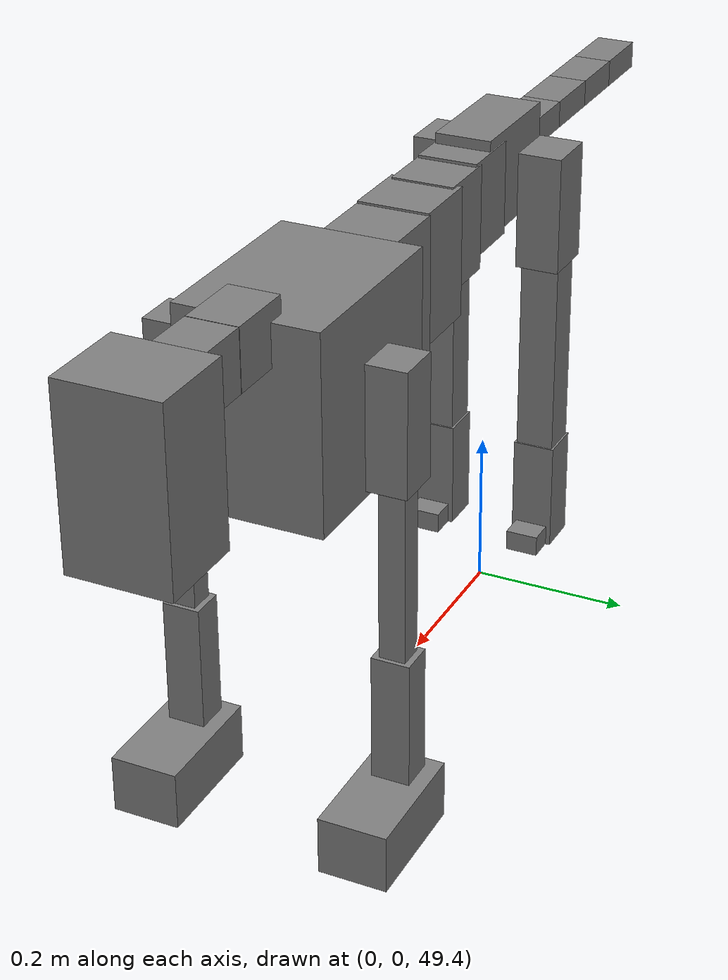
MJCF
<mujoco model="dog">

    <default>
        <joint armature="0.02" stiffness="1" damping="0.2" limited="true"/>
        <geom condim="3" friction="1 0.05 0.05" margin="0.01"/>
        <motor ctrllimited="true" ctrlrange="-1.0 1.0" forcelimited="true" gear="50"/>
    </default>

    <compiler inertiafromgeom="true" angle="radian"/>

    <option timestep="0.016" iterations="50" tolerance="1e-10" solver="Newton" jacobian="dense" cone="pyramidal"/>

    <size nconmax="20000" njmax="60000" nstack="5000000"/>
    <visual>
        <map force="0.1" zfar="30"/>
        <rgba haze="0.15 0.25 0.35 1"/>
        <quality shadowsize="2048"/>
        <global offwidth="800" offheight="800"/>
    </visual>

    <asset>
        <texture type="skybox" builtin="gradient" rgb1="0.3 0.5 0.7" rgb2="0 0 0" width="512" height="512"/>
        <texture name="texplane" type="2d" builtin="checker" rgb1=".2 .3 .4" rgb2=".1 0.15 0.2" width="512" height="512"
                 mark="cross" markrgb=".8 .8 .8"/>
        <texture name="texgeom" type="cube" builtin="flat" mark="cross" width="127" height="1278" rgb1="0.8 0.6 0.4"
                 rgb2="0.8 0.6 0.4" markrgb="1 1 1" random="0.01"/>

        <material name="matplane" reflectance="0.3" texture="texplane" texrepeat="1 1" texuniform="true"/>
        <material name="matgeom" texture="texgeom" texuniform="true" rgba="0.8 0.6 .4 1"/>
    </asset>

    <worldbody>
        <geom name="floor" pos="0 0 0" size="0 0 .25" type="plane" material="matplane" condim="3"/>

        <light directional="false" diffuse=".2 .2 .2" specular="0 0 0" pos="0 0 5" dir="0 0 -1" castshadow="false"/>
        <light mode="targetbodycom" target="torso" directional="false" diffuse=".8 .8 .8" specular="0.3 0.3 0.3"
               pos="0 0 4.0" dir="0 0 -1"/>

        <body name="root" pos="0 0 50">
            <freejoint name="root_1"/>
            <geom type="box" pos="0 0 -0.02" size="0.0774  0.0358  0.063" density="2030"/>

            <body name="spine1" pos="0.054 0 0">
                <joint name="spine1_y" axis="0 1 0" range="0 0.7" limited="true"/>
                <geom type="box" pos="0.02375 0 -0.03" size="0.04375  0.0375  0.05985" density="2030"/>

                <body name="spine2" pos="0.0612 0 0">
                    <joint name="spine2_y" axis="0 1 0" range="-0.15 0.15" limited="true"/>
                    <geom type="box" pos="0.03555  0  -0.04" size="0.04055  0.039  0.06615" density="2030"/>

                    <body name="spine3" pos="0.0730 0 0">
                        <joint name="spine3_y" axis="0 1 0" range="-0.15 0.15" limited="true"/>
                        <geom type="box" pos="0.03555  0  -0.057" size="0.04555  0.0445  0.081" density="2030"/>

                        <body name="spine4" pos="0.0780 0 0">
                            <joint name="spine4_y" axis="0 1 0" range="-0.15 0.15" limited="true"/>
                            <geom type="box" pos="0.05265  0  -0.07" size="0.05265  0.045  0.09135" density="2030"/>

                            <body name="torso" pos="0.1082 0 0">
                                <joint name="torso_y" axis="0 1 0" range="-0.15 0.15" limited="true"/>
                                <geom type="box" pos="0.11925  0  -0.085" size="0.11925  0.085  0.11745"
                                      density="2030"/>

                                <body name="neck1" pos="0.2160  0   0.0180">
                                    <joint name="neck1_y" axis="0 1 0" range="-1.2  -1" limited="true"/>
                                    <geom type="box" pos="0.0423  0  0" size="0.0423  0.03  0.036" density="2325"/>

                                    <body name="neck2" pos="0.0853  0  0">
                                        <joint name="neck2_y" axis="0 1 0" range="0.1  0" limited="true"/>
                                        <geom type="box" pos="0.0423  0  0" size="0.0423  0.03  0.036" density="2325"/>

                                        <body name="head" pos="0.0853  0  0">
                                            <joint name="head_y" axis="0 1 0" range="-0.3  -0.2" limited="true"/>
                                            <geom type="box" pos="0.0531  0  -0.055" size="0.0531  0.06  0.1044"
                                                  density="4030"/>

                                        </body>
                                    </body>
                                </body>

                                <body name="front_shoulder" pos="0.156  0   -0.0480">
                                    <joint name="front_shoulder_y" axis="0 1 0" range="-1 1.5" limited="true"/>
                                    <geom type="box" pos="0 0.13 -0.0465" size="0.0279  0.0239  0.0731" density="1158"/>
                                    <geom type="box" pos="0 -0.13 -0.0465" size="0.0279  0.0239  0.0731"
                                          density="1158"/>

                                    <body name="front_elbow" pos="0  0  -0.0929">
                                        <joint name="front_elbow_y" axis="0 1 0" range="-2 0" limited="true"/>
                                        <geom type="box" pos="0 0.13 -0.1246" size="0.0154  0.0157  0.1246"
                                              density="1081"/>
                                        <geom type="box" pos="0 -0.13 -0.1246" size="0.0154  0.0157  0.1246"
                                              density="1081"/>

                                        <body name="front_wrist" pos="0  0  -0.2492">
                                            <joint name="front_wrist_y" axis="0 1 0" range="-0.2 0" limited="true"/>
                                            <geom type="box" pos="0 0.13 -0.0785" size="0.0206  0.0229  0.0917"
                                                  density="1664"/>
                                            <geom type="box" pos="0 -0.13 -0.0785" size="0.0206  0.0229  0.0917"
                                                  density="1664"/>

                                            <body name="front_finger_end" pos="0  0  -0.1570">
                                                <joint name="front_finger_y" axis="0 1 0" range="-0.4 1"
                                                       limited="true"/>
                                                <geom type="box" pos="0.0412  0.13  -0.0204"
                                                      size="0.0755  0.0412  0.0354" density="1515"/>
                                                <geom type="box" pos="0.0412  -0.13  -0.0204"
                                                      size="0.0755  0.0412  0.0354" density="1515"/>

                                            </body>

                                        </body>
                                    </body>
                                </body>

                            </body>
                        </body>
                    </body>
                </body>
            </body>

            <body name="back_hip" pos="-0.03 0 -0.018">
                <joint name="back_hip_y" axis="0 1 0" range="-1.5 0.3" limited="true"/>
                <geom type="box" pos="0 0.07 -0.0516" size="0.0355  0.0279  0.0744" density="1154"/>
                <geom type="box" pos="0 -0.07 -0.0516" size="0.0355  0.0279  0.0744" density="1154"/>

                <body name="back_knee" pos="0  0  -0.1033">
                    <joint name="back_knee_y" axis="0 1 0" range="0 2.8" limited="true"/>
                    <geom type="box" pos="0 0.07 -0.1419" size="0.0245  0.0242  0.1575" density="1227"/>
                    <geom type="box" pos="0 -0.07 -0.1419" size="0.0245  0.0242  0.1575" density="1227"/>

                    <body name="back_ankle" pos="0  0  -0.2839">
                        <joint name="back_ankle_y" axis="0 1 0" range="-2.2 0" limited="true"/>
                        <geom type="box" pos="0 0.07 -0.0592" size="0.0268  0.0268  0.0704" density="1284"/>
                        <geom type="box" pos="0 -0.07 -0.0592" size="0.0268  0.0268  0.0704" density="1284"/>

                        <body name="back_toe_end" pos="0  0  -0.1183">
                            <joint name="back_toe_y" axis="0 1 0" range="-0.4 1" limited="true"/>
                            <geom type="box" pos="0.0210  0.07  0.0018" size="0.0385  0.0210  0.0132" density="1515"/>
                            <geom type="box" pos="0.0210  -0.07  0.0018" size="0.0385  0.0210  0.0132" density="1515"/>

                        </body>
                    </body>
                </body>
            </body>

            <body name="tail1" pos="-0.074 0 -0.006">
                <joint name="tail1_y" axis="0 1 0" range="-0.2 0.2" limited="true"/>
                <geom type="box" pos="-0.0536  0  0" size="0.045  0.025  0.0175" density="1587"/>

                <body name="tail2" pos="-0.09 0 0">
                    <joint name="tail2_y" axis="0 1 0" range="-0.2 0.2" limited="true"/>
                    <geom type="box" pos="-0.0536  0  0" size="0.045  0.025  0.0175" density="1587"/>

                    <body name="tail3" pos="-0.09 0 0">
                        <joint name="tail3_y" axis="0 1 0" range="-0.2 0.2" limited="true"/>
                        <geom type="box" pos="-0.0536  0  0" size="0.045  0.025  0.0175" density="1587"/>

                        <body name="tail4" pos="-0.09 0 0">
                            <joint name="tail4_y" axis="0 1 0" range="-0.2 0.2" limited="true"/>
                            <geom type="box" pos="-0.0536  0  0" size="0.045  0.025  0.0175" density="1587"/>

                        </body>
                    </body>
                </body>
            </body>
        </body>
    </worldbody>

    <actuator>
        <motor joint="spine1_y" forcerange="-150 150     "/>
        <motor joint="spine2_y" forcerange="-150 150     "/>
        <motor joint="spine3_y" forcerange="-150 150     "/>
        <motor joint="spine4_y" forcerange="-150 150     "/>
        <motor joint="torso_y" forcerange="-150 150     "/>
        <motor joint="neck1_y" forcerange="-100 100       "/>
        <motor joint="neck2_y" forcerange="-100 100       "/>
        <motor joint="head_y" forcerange="-150 150       "/>
        <motor joint="front_shoulder_y" forcerange="-154.35 104.71"/>
        <motor joint="front_elbow_y" forcerange="-102.78 111.43"/>
        <motor joint="front_wrist_y" forcerange="-60.04 123.42"/>
        <motor joint="front_finger_y" forcerange="-83.21 96.36"/>
        <motor joint="back_hip_y" forcerange="-249.77 321.57"/>
        <motor joint="back_knee_y" forcerange="-325.43 225.86"/>
        <motor joint="back_angle_y" forcerange="-233.51 95.10"/>
        <motor joint="back_toe_y" forcerange="-32.84 54.97"/>
        <motor joint="tail1_y" forcerange="-50 50     "/>
        <motor joint="tail2_y" forcerange="-50 50     "/>
        <motor joint="tail3_y" forcerange="-50 50     "/>
        <motor joint="tail4_y" forcerange="-50 50     "/>
    </actuator>
</mujoco>
